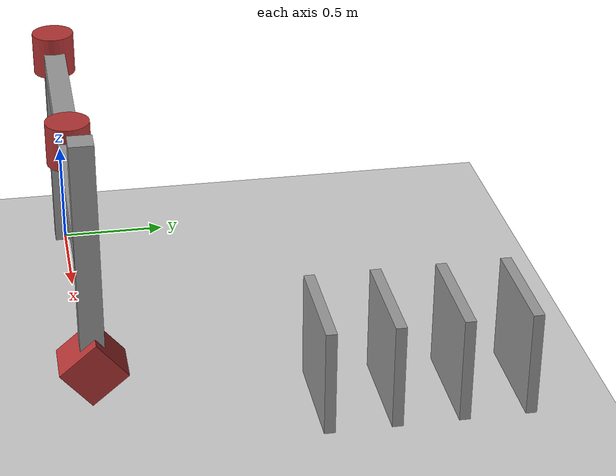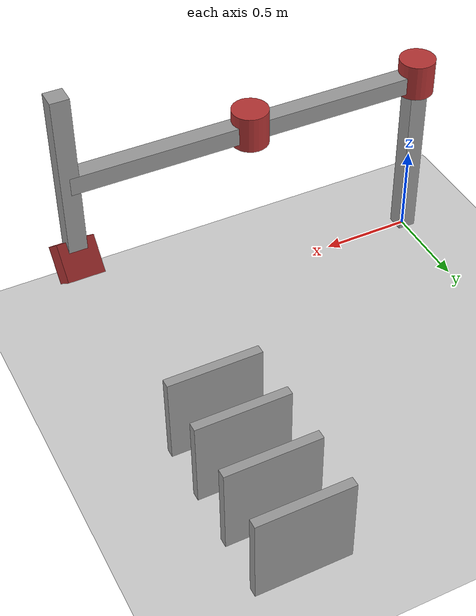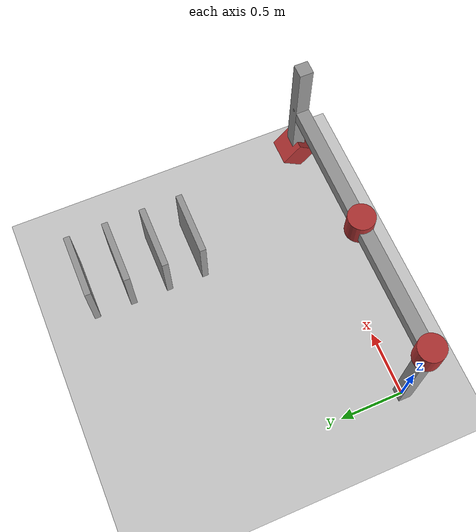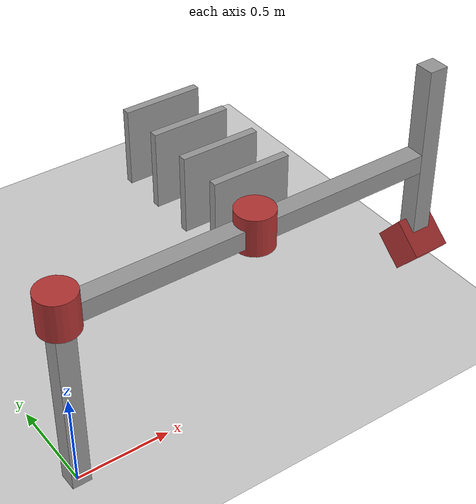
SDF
<sdf version="1.5">
 <world name="default">
  <light name="sun" type="directional">
   <pose>0 0 10 0 -0 0</pose>
   <diffuse>0.8 0.8 0.8 1</diffuse>
   <specular>0.2 0.2 0.2 1</specular>
   <attenuation>
    <range>1000</range>
    <constant>0.9</constant>
    <linear>0.01</linear>
    <quadratic>0.001</quadratic>
   </attenuation>
   <direction>-0.5 0.1 -0.9</direction>
  </light>
  <model name="ground_plane">
   <static>1</static>
   <link name="link">
    <collision name="collision">
     <geometry><plane><normal>0 0 1</normal><size>100 100</size></plane></geometry>
     <surface><friction><ode><mu>100</mu><mu2>50</mu2></ode></friction></surface>
    </collision>
    <visual name="visual">
     <cast_shadows>0</cast_shadows>
     <geometry><plane><normal>0 0 1</normal><size>100 100</size></plane></geometry>
     <material>
      <script><uri>file://media/materials/scripts/gazebo.material</uri><name>Gazebo/Grey</name></script>
     </material>
    </visual>
   </link>
  </model>
  <physics name="default_physics" default="0" type="ode">
   <max_step_size>0.001</max_step_size>
   <real_time_factor>1</real_time_factor>
   <real_time_update_rate>1000</real_time_update_rate>
   <gravity>0 0 -9.8</gravity>
   <magnetic_field>6e-06 2.3e-05 -4.2e-05</magnetic_field>
   <roki>
    <contact_info>
     <compensation>500</compensation>
     <relaxation>1</relaxation>
     <static_friction>1.0</static_friction>
     <friction>1.0</friction>
    </contact_info>
    <solver_type>Volume</solver_type>
    <debug_print>true</debug_print>
   </roki>
  </physics>
  <scene><ambient>0.4 0.4 0.4 1</ambient><background>0.7 0.7 0.7 1</background><shadows>1</shadows></scene>
  <audio><device>default</device></audio>
  <spherical_coordinates>
   <surface_model>EARTH_WGS84</surface_model>
   <latitude_deg>0</latitude_deg>
   <longitude_deg>0</longitude_deg>
   <elevation>0</elevation>
   <heading_deg>0</heading_deg>
  </spherical_coordinates>
  <model name="domino050_0">
   <link name="link">
    <pose>0 0 -0.25 0 -0 0</pose>
    <inertial>
     <mass>0.5</mass>
     <inertia>
      <ixx>0.166667</ixx>
      <ixy>0</ixy>
      <ixz>0</ixz>
      <iyy>0.166667</iyy>
      <iyz>0</iyz>
      <izz>0.166667</izz>
     </inertia>
    </inertial>
    <visual name="visual">
     <geometry><box><size>0.5 0.05 0.5</size></box></geometry>
     <material>
      <script><name>Gazebo/Grey</name><uri>file://media/materials/scripts/gazebo.material</uri></script>
      <shader type="pixel"><normal_map>__default__</normal_map></shader>
      <ambient>0.3 0.3 0.3 1</ambient>
      <diffuse>0.7 0.7 0.7 1</diffuse>
      <specular>0.01 0.01 0.01 1</specular>
      <emissive>0 0 0 1</emissive>
     </material>
    </visual>
    <collision name="collision">
     <geometry><box><size>0.5 0.05 0.5</size></box></geometry>
     <surface>
      <friction><ode><mu>1</mu><mu2>1</mu2><fdir1>0 0 0</fdir1><slip1>0</slip1><slip2>0</slip2></ode></friction>
      <bounce><restitution_coefficient>0</restitution_coefficient><threshold>1e+06</threshold></bounce>
      <contact>
       <collide_without_contact>0</collide_without_contact>
       <collide_without_contact_bitmask>1</collide_without_contact_bitmask>
       <collide_bitmask>1</collide_bitmask>
       <ode>
        <soft_cfm>0</soft_cfm>
        <soft_erp>0.2</soft_erp>
        <kp>1e+13</kp>
        <kd>1</kd>
        <max_vel>0.01</max_vel>
        <min_depth>0</min_depth>
       </ode>
       <bullet>
        <split_impulse>1</split_impulse>
        <split_impulse_penetration_threshold>-0.01</split_impulse_penetration_threshold>
        <soft_cfm>0</soft_cfm>
        <soft_erp>0.2</soft_erp>
        <kp>1e+13</kp>
        <kd>1</kd>
       </bullet>
      </contact>
     </surface>
    </collision>
   </link>
   <static>0</static>
   <pose>1.7 1 0.5 0 -0 0</pose>
  </model>
  <model name="domino050_1">
   <link name="link">
    <pose>0 0 -0.25 0 -0 0</pose>
    <inertial>
     <mass>0.5</mass>
     <inertia>
      <ixx>0.166667</ixx>
      <ixy>0</ixy>
      <ixz>0</ixz>
      <iyy>0.166667</iyy>
      <iyz>0</iyz>
      <izz>0.166667</izz>
     </inertia>
    </inertial>
    <visual name="visual">
     <geometry><box><size>0.5 0.05 0.5</size></box></geometry>
     <material>
      <script><name>Gazebo/Grey</name><uri>file://media/materials/scripts/gazebo.material</uri></script>
      <shader type="pixel"><normal_map>__default__</normal_map></shader>
      <ambient>0.3 0.3 0.3 1</ambient>
      <diffuse>0.7 0.7 0.7 1</diffuse>
      <specular>0.01 0.01 0.01 1</specular>
      <emissive>0 0 0 1</emissive>
     </material>
    </visual>
    <collision name="collision">
     <geometry><box><size>0.5 0.05 0.5</size></box></geometry>
     <surface>
      <friction><ode><mu>1</mu><mu2>1</mu2><fdir1>0 0 0</fdir1><slip1>0</slip1><slip2>0</slip2></ode></friction>
      <bounce><restitution_coefficient>0</restitution_coefficient><threshold>1e+06</threshold></bounce>
      <contact>
       <collide_without_contact>0</collide_without_contact>
       <collide_without_contact_bitmask>1</collide_without_contact_bitmask>
       <collide_bitmask>1</collide_bitmask>
       <ode>
        <soft_cfm>0</soft_cfm>
        <soft_erp>0.2</soft_erp>
        <kp>1e+13</kp>
        <kd>1</kd>
        <max_vel>0.01</max_vel>
        <min_depth>0</min_depth>
       </ode>
       <bullet>
        <split_impulse>1</split_impulse>
        <split_impulse_penetration_threshold>-0.01</split_impulse_penetration_threshold>
        <soft_cfm>0</soft_cfm>
        <soft_erp>0.2</soft_erp>
        <kp>1e+13</kp>
        <kd>1</kd>
       </bullet>
      </contact>
     </surface>
    </collision>
   </link>
   <static>0</static>
   <pose>1.7 1.3 0.5 0 -0 0</pose>
  </model>
  <model name="domino050_1_0">
   <link name="link">
    <pose>0 0 -0.25 0 -0 0</pose>
    <inertial>
     <mass>0.5</mass>
     <inertia>
      <ixx>0.166667</ixx>
      <ixy>0</ixy>
      <ixz>0</ixz>
      <iyy>0.166667</iyy>
      <iyz>0</iyz>
      <izz>0.166667</izz>
     </inertia>
    </inertial>
    <visual name="visual">
     <geometry><box><size>0.5 0.05 0.5</size></box></geometry>
     <material>
      <script><name>Gazebo/Grey</name><uri>file://media/materials/scripts/gazebo.material</uri></script>
      <shader type="pixel"><normal_map>__default__</normal_map></shader>
      <ambient>0.3 0.3 0.3 1</ambient>
      <diffuse>0.7 0.7 0.7 1</diffuse>
      <specular>0.01 0.01 0.01 1</specular>
      <emissive>0 0 0 1</emissive>
     </material>
    </visual>
    <collision name="collision">
     <geometry><box><size>0.5 0.05 0.5</size></box></geometry>
     <surface>
      <friction><ode><mu>1</mu><mu2>1</mu2><fdir1>0 0 0</fdir1><slip1>0</slip1><slip2>0</slip2></ode></friction>
      <bounce><restitution_coefficient>0</restitution_coefficient><threshold>1e+06</threshold></bounce>
      <contact>
       <collide_without_contact>0</collide_without_contact>
       <collide_without_contact_bitmask>1</collide_without_contact_bitmask>
       <collide_bitmask>1</collide_bitmask>
       <ode>
        <soft_cfm>0</soft_cfm>
        <soft_erp>0.2</soft_erp>
        <kp>1e+13</kp>
        <kd>1</kd>
        <max_vel>0.01</max_vel>
        <min_depth>0</min_depth>
       </ode>
       <bullet>
        <split_impulse>1</split_impulse>
        <split_impulse_penetration_threshold>-0.01</split_impulse_penetration_threshold>
        <soft_cfm>0</soft_cfm>
        <soft_erp>0.2</soft_erp>
        <kp>1e+13</kp>
        <kd>1</kd>
       </bullet>
      </contact>
     </surface>
    </collision>
   </link>
   <static>0</static>
   <pose>1.7 1.6 0.5 0 -0 0</pose>
  </model>
  <model name="domino050_2">
   <link name="link">
    <pose>0 0 -0.25 0 -0 0</pose>
    <inertial>
     <mass>0.5</mass>
     <inertia>
      <ixx>0.166667</ixx>
      <ixy>0</ixy>
      <ixz>0</ixz>
      <iyy>0.166667</iyy>
      <iyz>0</iyz>
      <izz>0.166667</izz>
     </inertia>
    </inertial>
    <visual name="visual">
     <geometry><box><size>0.5 0.05 0.5</size></box></geometry>
     <material>
      <script><name>Gazebo/Grey</name><uri>file://media/materials/scripts/gazebo.material</uri></script>
      <shader type="pixel"><normal_map>__default__</normal_map></shader>
      <ambient>0.3 0.3 0.3 1</ambient>
      <diffuse>0.7 0.7 0.7 1</diffuse>
      <specular>0.01 0.01 0.01 1</specular>
      <emissive>0 0 0 1</emissive>
     </material>
    </visual>
    <collision name="collision">
     <geometry><box><size>0.5 0.05 0.5</size></box></geometry>
     <surface>
      <friction><ode><mu>1</mu><mu2>1</mu2><fdir1>0 0 0</fdir1><slip1>0</slip1><slip2>0</slip2></ode></friction>
      <bounce><restitution_coefficient>0</restitution_coefficient><threshold>1e+06</threshold></bounce>
      <contact>
       <collide_without_contact>0</collide_without_contact>
       <collide_without_contact_bitmask>1</collide_without_contact_bitmask>
       <collide_bitmask>1</collide_bitmask>
       <ode>
        <soft_cfm>0</soft_cfm>
        <soft_erp>0.2</soft_erp>
        <kp>1e+13</kp>
        <kd>1</kd>
        <max_vel>0.01</max_vel>
        <min_depth>0</min_depth>
       </ode>
       <bullet>
        <split_impulse>1</split_impulse>
        <split_impulse_penetration_threshold>-0.01</split_impulse_penetration_threshold>
        <soft_cfm>0</soft_cfm>
        <soft_erp>0.2</soft_erp>
        <kp>1e+13</kp>
        <kd>1</kd>
       </bullet>
      </contact>
     </surface>
    </collision>
   </link>
   <static>0</static>
   <pose>1.7 1.9 0.5 0 -0 0</pose>
  </model>
  <model name="simple_arm_02">
   <link name="base">
    <pose>-1 0 -0.175 0 -0 0</pose>
    <inertial>
     <mass>0.1</mass>
     <inertia><ixx>1</ixx><ixy>0</ixy><ixz>0</ixz><iyy>1</iyy><iyz>0</iyz><izz>1</izz></inertia>
    </inertial>
    <visual name="visual">
     <geometry><box><size>0.1 0.1 1</size></box></geometry>
     <material>
      <lighting>1</lighting>
      <script><uri>file://media/materials/scripts/gazebo.material</uri><name>Gazebo/Grey</name></script>
      <shader type="pixel"><normal_map>__default__</normal_map></shader>
      <ambient>0.3 0.3 0.3 1</ambient>
      <diffuse>0.7 0.7 0.7 1</diffuse>
      <specular>0.01 0.01 0.01 1</specular>
      <emissive>0 0 0 1</emissive>
     </material>
    </visual>
    <collision name="collision">
     <geometry><box><size>0.1 0.1 1</size></box></geometry>
     <surface>
      <friction><ode><mu>1</mu><mu2>1</mu2><fdir1>0 0 0</fdir1><slip1>0</slip1><slip2>0</slip2></ode></friction>
      <bounce><restitution_coefficient>0</restitution_coefficient><threshold>1e+06</threshold></bounce>
      <contact>
       <collide_without_contact>0</collide_without_contact>
       <collide_without_contact_bitmask>1</collide_without_contact_bitmask>
       <collide_bitmask>1</collide_bitmask>
       <ode>
        <soft_cfm>0</soft_cfm>
        <soft_erp>0.2</soft_erp>
        <kp>1e+13</kp>
        <kd>1</kd>
        <max_vel>0.01</max_vel>
        <min_depth>0</min_depth>
       </ode>
       <bullet>
        <split_impulse>1</split_impulse>
        <split_impulse_penetration_threshold>-0.01</split_impulse_penetration_threshold>
        <soft_cfm>0</soft_cfm>
        <soft_erp>0.2</soft_erp>
        <kp>1e+13</kp>
        <kd>1</kd>
       </bullet>
      </contact>
     </surface>
    </collision>
   </link>
   <link name="link_1_0">
    <pose>-1 0 0.35 0 -0 0</pose>
    <inertial>
     <mass>0.1</mass>
     <inertia><ixx>1</ixx><ixy>0</ixy><ixz>0</ixz><iyy>1</iyy><iyz>0</iyz><izz>1</izz></inertia>
    </inertial>
    <visual name="visual">
     <geometry><cylinder><radius>0.1</radius><length>0.2</length></cylinder></geometry>
     <material>
      <lighting>1</lighting>
      <script><uri>file://media/materials/scripts/gazebo.material</uri><name>Gazebo/Grey</name></script>
      <shader type="pixel"><normal_map>__default__</normal_map></shader>
      <ambient>0.3 0.3 0.3 1</ambient>
      <diffuse>0.7 0.2 0.2 1</diffuse>
      <specular>0.01 0.01 0.01 1</specular>
      <emissive>0 0 0 1</emissive>
     </material>
    </visual>
    <collision name="collision">
     <geometry><cylinder><radius>0.1</radius><length>0.2</length></cylinder></geometry>
     <surface>
      <friction><ode><mu>1</mu><mu2>1</mu2><fdir1>0 0 0</fdir1><slip1>0</slip1><slip2>0</slip2></ode></friction>
      <bounce><restitution_coefficient>0</restitution_coefficient><threshold>1e+06</threshold></bounce>
      <contact>
       <collide_without_contact>0</collide_without_contact>
       <collide_without_contact_bitmask>1</collide_without_contact_bitmask>
       <collide_bitmask>1</collide_bitmask>
       <ode>
        <soft_cfm>0</soft_cfm>
        <soft_erp>0.2</soft_erp>
        <kp>1e+13</kp>
        <kd>1</kd>
        <max_vel>0.01</max_vel>
        <min_depth>0</min_depth>
       </ode>
       <bullet>
        <split_impulse>1</split_impulse>
        <split_impulse_penetration_threshold>-0.01</split_impulse_penetration_threshold>
        <soft_cfm>0</soft_cfm>
        <soft_erp>0.2</soft_erp>
        <kp>1e+13</kp>
        <kd>1</kd>
       </bullet>
      </contact>
     </surface>
    </collision>
   </link>
   <link name="link_2">
    <pose>-0.5 0 0.325 0 -0 0</pose>
    <inertial>
     <mass>0.1</mass>
     <inertia><ixx>1</ixx><ixy>0</ixy><ixz>0</ixz><iyy>1</iyy><iyz>0</iyz><izz>1</izz></inertia>
    </inertial>
    <visual name="visual">
     <geometry><box><size>1 0.1 0.1</size></box></geometry>
     <material>
      <lighting>1</lighting>
      <script><uri>file://media/materials/scripts/gazebo.material</uri><name>Gazebo/Grey</name></script>
      <shader type="pixel"><normal_map>__default__</normal_map></shader>
      <ambient>0.3 0.3 0.3 1</ambient>
      <diffuse>0.7 0.7 0.7 1</diffuse>
      <specular>0.01 0.01 0.01 1</specular>
      <emissive>0 0 0 1</emissive>
     </material>
    </visual>
    <collision name="collision">
     <geometry><box><size>1 0.1 0.1</size></box></geometry>
     <surface>
      <friction><ode><mu>1</mu><mu2>1</mu2><fdir1>0 0 0</fdir1><slip1>0</slip1><slip2>0</slip2></ode></friction>
      <bounce><restitution_coefficient>0</restitution_coefficient><threshold>1e+06</threshold></bounce>
      <contact>
       <collide_without_contact>0</collide_without_contact>
       <collide_without_contact_bitmask>1</collide_without_contact_bitmask>
       <collide_bitmask>1</collide_bitmask>
       <ode>
        <soft_cfm>0</soft_cfm>
        <soft_erp>0.2</soft_erp>
        <kp>1e+13</kp>
        <kd>1</kd>
        <max_vel>0.01</max_vel>
        <min_depth>0</min_depth>
       </ode>
       <bullet>
        <split_impulse>1</split_impulse>
        <split_impulse_penetration_threshold>-0.01</split_impulse_penetration_threshold>
        <soft_cfm>0</soft_cfm>
        <soft_erp>0.2</soft_erp>
        <kp>1e+13</kp>
        <kd>1</kd>
       </bullet>
      </contact>
     </surface>
    </collision>
   </link>
   <link name="link_2_0">
    <pose>0 0 0.34 0 -0 0</pose>
    <inertial>
     <mass>0.1</mass>
     <inertia><ixx>1</ixx><ixy>0</ixy><ixz>0</ixz><iyy>1</iyy><iyz>0</iyz><izz>1</izz></inertia>
    </inertial>
    <visual name="visual">
     <geometry><cylinder><radius>0.1</radius><length>0.2</length></cylinder></geometry>
     <material>
      <lighting>1</lighting>
      <script><uri>file://media/materials/scripts/gazebo.material</uri><name>Gazebo/Grey</name></script>
      <shader type="pixel"><normal_map>__default__</normal_map></shader>
      <ambient>0.3 0.3 0.3 1</ambient>
      <diffuse>0.7 0.2 0.2 1</diffuse>
      <specular>0.01 0.01 0.01 1</specular>
      <emissive>0 0 0 1</emissive>
     </material>
    </visual>
    <collision name="collision">
     <geometry><cylinder><radius>0.1</radius><length>0.2</length></cylinder></geometry>
     <surface>
      <friction><ode><mu>1</mu><mu2>1</mu2><fdir1>0 0 0</fdir1><slip1>0</slip1><slip2>0</slip2></ode></friction>
      <bounce><restitution_coefficient>0</restitution_coefficient><threshold>1e+06</threshold></bounce>
      <contact>
       <collide_without_contact>0</collide_without_contact>
       <collide_without_contact_bitmask>1</collide_without_contact_bitmask>
       <collide_bitmask>1</collide_bitmask>
       <ode>
        <soft_cfm>0</soft_cfm>
        <soft_erp>0.2</soft_erp>
        <kp>1e+13</kp>
        <kd>1</kd>
        <max_vel>0.01</max_vel>
        <min_depth>0</min_depth>
       </ode>
       <bullet>
        <split_impulse>1</split_impulse>
        <split_impulse_penetration_threshold>-0.01</split_impulse_penetration_threshold>
        <soft_cfm>0</soft_cfm>
        <soft_erp>0.2</soft_erp>
        <kp>1e+13</kp>
        <kd>1</kd>
       </bullet>
      </contact>
     </surface>
    </collision>
   </link>
   <link name="link_3">
    <pose>0.5 0 0.325 0 -0 0</pose>
    <inertial>
     <mass>0.1</mass>
     <inertia><ixx>1</ixx><ixy>0</ixy><ixz>0</ixz><iyy>1</iyy><iyz>0</iyz><izz>1</izz></inertia>
    </inertial>
    <visual name="visual">
     <geometry><box><size>1 0.1 0.1</size></box></geometry>
     <material>
      <lighting>1</lighting>
      <script><uri>file://media/materials/scripts/gazebo.material</uri><name>Gazebo/Grey</name></script>
      <shader type="pixel"><normal_map>__default__</normal_map></shader>
      <ambient>0.3 0.3 0.3 1</ambient>
      <diffuse>0.7 0.7 0.7 1</diffuse>
      <specular>0.01 0.01 0.01 1</specular>
      <emissive>0 0 0 1</emissive>
     </material>
    </visual>
    <collision name="collision">
     <geometry><box><size>1 0.1 0.1</size></box></geometry>
     <surface>
      <friction><ode><mu>1</mu><mu2>1</mu2><fdir1>0 0 0</fdir1><slip1>0</slip1><slip2>0</slip2></ode></friction>
      <bounce><restitution_coefficient>0</restitution_coefficient><threshold>1e+06</threshold></bounce>
      <contact>
       <collide_without_contact>0</collide_without_contact>
       <collide_without_contact_bitmask>1</collide_without_contact_bitmask>
       <collide_bitmask>1</collide_bitmask>
       <ode>
        <soft_cfm>0</soft_cfm>
        <soft_erp>0.2</soft_erp>
        <kp>1e+13</kp>
        <kd>1</kd>
        <max_vel>0.01</max_vel>
        <min_depth>0</min_depth>
       </ode>
       <bullet>
        <split_impulse>1</split_impulse>
        <split_impulse_penetration_threshold>-0.01</split_impulse_penetration_threshold>
        <soft_cfm>0</soft_cfm>
        <soft_erp>0.2</soft_erp>
        <kp>1e+13</kp>
        <kd>1</kd>
       </bullet>
      </contact>
     </surface>
    </collision>
   </link>
   <link name="link_4">
    <pose>1 0 0.325 0 -0 0</pose>
    <inertial>
     <mass>0.1</mass>
     <inertia><ixx>1</ixx><ixy>0</ixy><ixz>0</ixz><iyy>1</iyy><iyz>0</iyz><izz>1</izz></inertia>
    </inertial>
    <visual name="visual">
     <geometry><box><size>0.1 0.1 1</size></box></geometry>
     <material>
      <lighting>1</lighting>
      <script><uri>file://media/materials/scripts/gazebo.material</uri><name>Gazebo/Grey</name></script>
      <shader type="pixel"><normal_map>__default__</normal_map></shader>
      <ambient>0.3 0.3 0.3 1</ambient>
      <diffuse>0.7 0.7 0.7 1</diffuse>
      <specular>0.01 0.01 0.01 1</specular>
      <emissive>0 0 0 1</emissive>
     </material>
    </visual>
    <collision name="collision">
     <geometry><box><size>0.1 0.1 1</size></box></geometry>
     <surface>
      <friction><ode><mu>1</mu><mu2>1</mu2><fdir1>0 0 0</fdir1><slip1>0</slip1><slip2>0</slip2></ode></friction>
      <bounce><restitution_coefficient>0</restitution_coefficient><threshold>1e+06</threshold></bounce>
      <contact>
       <collide_without_contact>0</collide_without_contact>
       <collide_without_contact_bitmask>1</collide_without_contact_bitmask>
       <collide_bitmask>1</collide_bitmask>
       <ode>
        <soft_cfm>0</soft_cfm>
        <soft_erp>0.2</soft_erp>
        <kp>1e+13</kp>
        <kd>1</kd>
        <max_vel>0.01</max_vel>
        <min_depth>0</min_depth>
       </ode>
       <bullet>
        <split_impulse>1</split_impulse>
        <split_impulse_penetration_threshold>-0.01</split_impulse_penetration_threshold>
        <soft_cfm>0</soft_cfm>
        <soft_erp>0.2</soft_erp>
        <kp>1e+13</kp>
        <kd>1</kd>
       </bullet>
      </contact>
     </surface>
    </collision>
   </link>
   <link name="link_5">
    <pose>1 0 -0.175 0.7 -0 0</pose>
    <inertial>
     <mass>1</mass>
     <inertia><ixx>1</ixx><ixy>0</ixy><ixz>0</ixz><iyy>1</iyy><iyz>0</iyz><izz>1</izz></inertia>
    </inertial>
    <visual name="visual">
     <geometry><box><size>0.2 0.2 0.2</size></box></geometry>
     <material>
      <lighting>1</lighting>
      <script><uri>file://media/materials/scripts/gazebo.material</uri><name>Gazebo/Grey</name></script>
      <shader type="pixel"><normal_map>__default__</normal_map></shader>
      <ambient>0.3 0.3 0.3 1</ambient>
      <diffuse>0.7 0.2 0.2 1</diffuse>
      <specular>0.01 0.01 0.01 1</specular>
      <emissive>0 0 0 1</emissive>
     </material>
    </visual>
    <collision name="collision">
     <geometry><box><size>0.2 0.2 0.2</size></box></geometry>
     <surface>
      <friction><ode><mu>1</mu><mu2>1</mu2><fdir1>0 0 0</fdir1><slip1>0</slip1><slip2>0</slip2></ode></friction>
      <bounce><restitution_coefficient>0</restitution_coefficient><threshold>1e+06</threshold></bounce>
      <contact>
       <collide_without_contact>0</collide_without_contact>
       <collide_without_contact_bitmask>1</collide_without_contact_bitmask>
       <collide_bitmask>1</collide_bitmask>
       <ode>
        <soft_cfm>0</soft_cfm>
        <soft_erp>0.2</soft_erp>
        <kp>1e+13</kp>
        <kd>1</kd>
        <max_vel>0.01</max_vel>
        <min_depth>0</min_depth>
       </ode>
       <bullet>
        <split_impulse>1</split_impulse>
        <split_impulse_penetration_threshold>-0.01</split_impulse_penetration_threshold>
        <soft_cfm>0</soft_cfm>
        <soft_erp>0.2</soft_erp>
        <kp>1e+13</kp>
        <kd>1</kd>
       </bullet>
      </contact>
     </surface>
    </collision>
   </link>
   <joint name="fixed_to_world" type="fixed"><parent>world</parent><child>base</child></joint>
   <joint name="fixed1" type="fixed"><parent>base</parent><child>link_1_0</child></joint>
   <joint name="arm_elbow_pan" type="revolute">
    <parent>link_2</parent>
    <child>link_3</child>
    <pose>-0.5 0 0 0 -0 0</pose>
    <axis>
     <xyz>0 0 1</xyz>
     <use_parent_model_frame>0</use_parent_model_frame>
     <limit>
      <lower>-1.79769e+308</lower>
      <upper>1.79769e+308</upper>
      <effort>-1</effort>
      <velocity>-1</velocity>
     </limit>
     <dynamics>
      <spring_reference>0</spring_reference>
      <spring_stiffness>0</spring_stiffness>
      <damping>0</damping>
      <friction>0</friction>
     </dynamics>
    </axis>
    <physics>
     <ode>
      <cfm>0</cfm>
      <bounce>0</bounce>
      <velocity>0</velocity>
      <fudge_factor>0</fudge_factor>
      <limit><cfm>0</cfm><erp>0.2</erp></limit>
      <suspension><cfm>0</cfm><erp>0.2</erp></suspension>
     </ode>
    </physics>
   </joint>
   <joint name="arm_shoulder_pan" type="revolute">
    <parent>base</parent>
    <child>link_2</child>
    <pose>-0.5 0 0 0 -0 0</pose>
    <axis>
     <xyz>0 0 1</xyz>
     <use_parent_model_frame>0</use_parent_model_frame>
     <limit>
      <lower>-1.79769e+308</lower>
      <upper>1.79769e+308</upper>
      <effort>-1</effort>
      <velocity>-1</velocity>
     </limit>
     <dynamics>
      <spring_reference>0</spring_reference>
      <spring_stiffness>0</spring_stiffness>
      <damping>0</damping>
      <friction>0</friction>
     </dynamics>
    </axis>
    <physics>
     <ode>
      <cfm>0</cfm>
      <bounce>0</bounce>
      <velocity>0</velocity>
      <fudge_factor>0</fudge_factor>
      <limit><cfm>0</cfm><erp>0.2</erp></limit>
      <suspension><cfm>0</cfm><erp>0.2</erp></suspension>
     </ode>
    </physics>
   </joint>
   <joint name="fixed2" type="fixed"><parent>link_4</parent><child>link_5</child></joint>
   <joint name="fixed3" type="fixed"><parent>link_3</parent><child>link_4</child></joint>
   <joint name="fixed4" type="fixed">
    <parent>link_2</parent>
    <child>link_2_0</child>
    <physics>
     <ode>
      <cfm>0</cfm>
      <bounce>0</bounce>
      <velocity>0</velocity>
      <fudge_factor>0</fudge_factor>
      <limit><cfm>0</cfm><erp>0.2</erp></limit>
      <suspension><cfm>0</cfm><erp>0.2</erp></suspension>
     </ode>
    </physics>
   </joint>
   <static>0</static>
   <pose>1 0 0.68 0 -0 0</pose>
  </model>
 </world>
</sdf>
